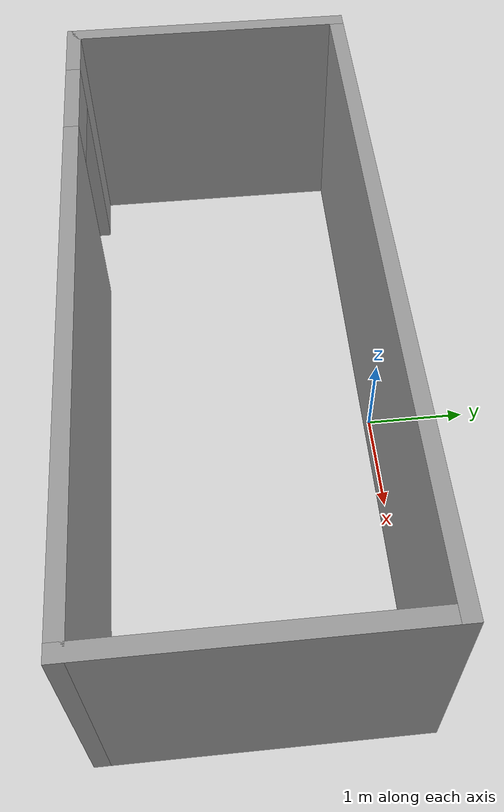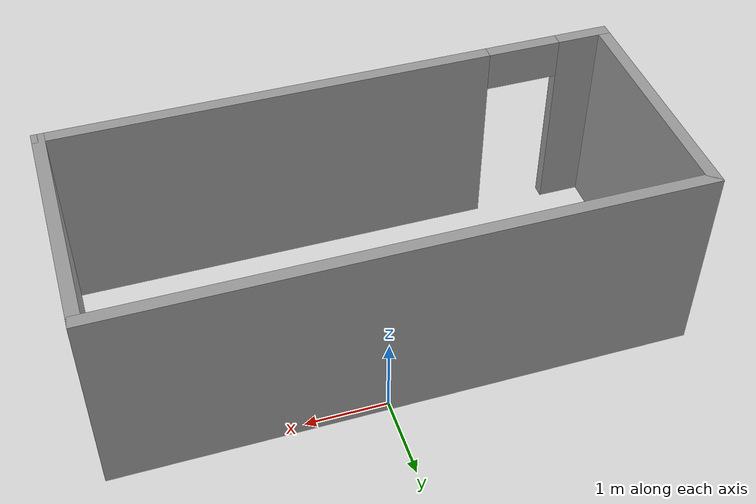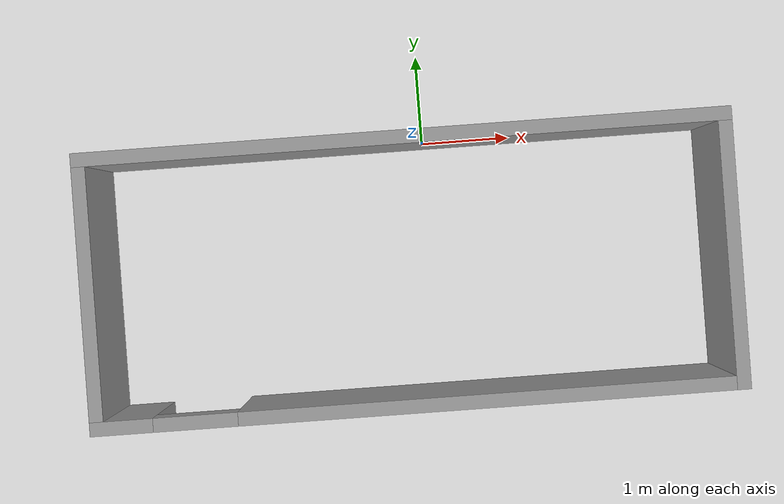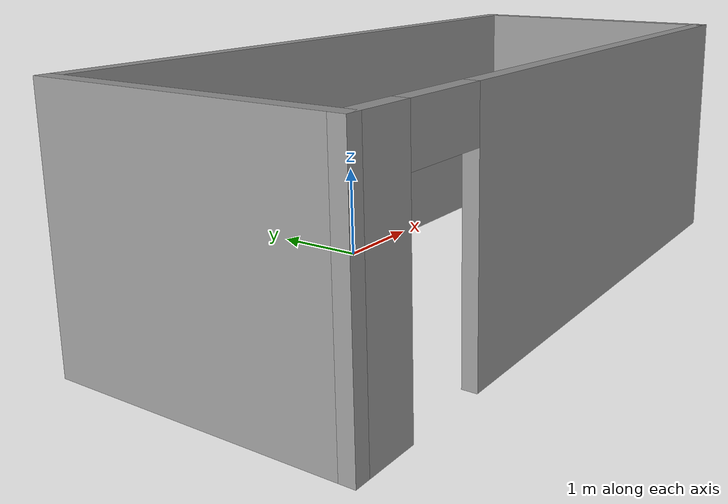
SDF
<?xml version='1.0'?>
<sdf version='1.6'>
  <model name='house_6'>
    <pose frame=''>-0.230019 -1.41403 0 0 -0 0</pose>
    <link name='Wall_0'>
      <collision name='Wall_0_Collision'>
        <geometry>
          <box>
            <size>7 0.15 2.5</size>
          </box>
        </geometry>
        <pose frame=''>0 0 1.25 0 -0 0</pose>
      </collision>
      <visual name='Wall_0_Visual'>
        <pose frame=''>0 0 1.25 0 -0 0</pose>
        <geometry>
          <box>
            <size>7 0.15 2.5</size>
          </box>
        </geometry>
        <material>
          <script>
            <uri>file://media/materials/scripts/gazebo.material</uri>
            <name>Gazebo/Grey</name>
          </script>
          <ambient>1 1 1 1</ambient>
        </material>
        <meta>
          <layer>0</layer>
        </meta>
      </visual>
      <pose frame=''>-0 1.425 0 0 -0 0</pose>
    </link>
    <link name='Wall_1'>
      <collision name='Wall_1_Collision'>
        <geometry>
          <box>
            <size>3 0.15 2.5</size>
          </box>
        </geometry>
        <pose frame=''>0 0 1.25 0 -0 0</pose>
      </collision>
      <visual name='Wall_1_Visual'>
        <pose frame=''>0 0 1.25 0 -0 0</pose>
        <geometry>
          <box>
            <size>3 0.15 2.5</size>
          </box>
        </geometry>
        <material>
          <script>
            <uri>file://media/materials/scripts/gazebo.material</uri>
            <name>Gazebo/Grey</name>
          </script>
          <ambient>1 1 1 1</ambient>
        </material>
        <meta>
          <layer>0</layer>
        </meta>
      </visual>
      <pose frame=''>3.425 0 0 0 -0 -1.5708</pose>
    </link>
    <link name='Wall_2'>
      <pose frame=''>-0 -1.425 0 0 -0 3.14159</pose>
      <visual name='Wall_2_Visual_0'>
        <pose frame=''>-0.785453 0 1.25 0 -0 0</pose>
        <geometry>
          <box>
            <size>5.42909 0.15 2.5</size>
          </box>
        </geometry>
        <material>
          <script>
            <uri>file://media/materials/scripts/gazebo.material</uri>
            <name>Gazebo/Grey</name>
          </script>
          <ambient>1 1 1 1</ambient>
        </material>
        <meta>
          <layer>0</layer>
        </meta>
      </visual>
      <collision name='Wall_2_Collision_0'>
        <geometry>
          <box>
            <size>5.42909 0.15 2.5</size>
          </box>
        </geometry>
        <pose frame=''>-0.785453 0 1.25 0 -0 0</pose>
      </collision>
      <visual name='Wall_2_Visual_1'>
        <pose frame=''>3.16455 0 1.25 0 -0 0</pose>
        <geometry>
          <box>
            <size>0.670906 0.15 2.5</size>
          </box>
        </geometry>
        <material>
          <script>
            <uri>file://media/materials/scripts/gazebo.material</uri>
            <name>Gazebo/Grey</name>
          </script>
          <ambient>1 1 1 1</ambient>
        </material>
        <meta>
          <layer>0</layer>
        </meta>
      </visual>
      <collision name='Wall_2_Collision_1'>
        <geometry>
          <box>
            <size>0.670906 0.15 2.5</size>
          </box>
        </geometry>
        <pose frame=''>3.16455 0 1.25 0 -0 0</pose>
      </collision>
      <visual name='Wall_2_Visual_2'>
        <pose frame=''>2.37909 0 2.25 0 -0 0</pose>
        <geometry>
          <box>
            <size>0.9 0.15 0.5</size>
          </box>
        </geometry>
        <material>
          <script>
            <uri>file://media/materials/scripts/gazebo.material</uri>
            <name>Gazebo/Grey</name>
          </script>
          <ambient>1 1 1 1</ambient>
        </material>
        <meta>
          <layer>0</layer>
        </meta>
      </visual>
      <collision name='Wall_2_Collision_2'>
        <geometry>
          <box>
            <size>0.9 0.15 0.5</size>
          </box>
        </geometry>
        <pose frame=''>2.37909 0 2.25 0 -0 0</pose>
      </collision>
    </link>
    <link name='Wall_3'>
      <collision name='Wall_3_Collision'>
        <geometry>
          <box>
            <size>3 0.15 2.5</size>
          </box>
        </geometry>
        <pose frame=''>0 0 1.25 0 -0 0</pose>
      </collision>
      <visual name='Wall_3_Visual'>
        <pose frame=''>0 0 1.25 0 -0 0</pose>
        <geometry>
          <box>
            <size>3 0.15 2.5</size>
          </box>
        </geometry>
        <material>
          <script>
            <uri>file://media/materials/scripts/gazebo.material</uri>
            <name>Gazebo/Grey</name>
          </script>
          <ambient>1 1 1 1</ambient>
        </material>
        <meta>
          <layer>0</layer>
        </meta>
      </visual>
      <pose frame=''>-3.425 0 0 0 -0 1.5708</pose>
    </link>
    <static>1</static>
  </model>
</sdf>
